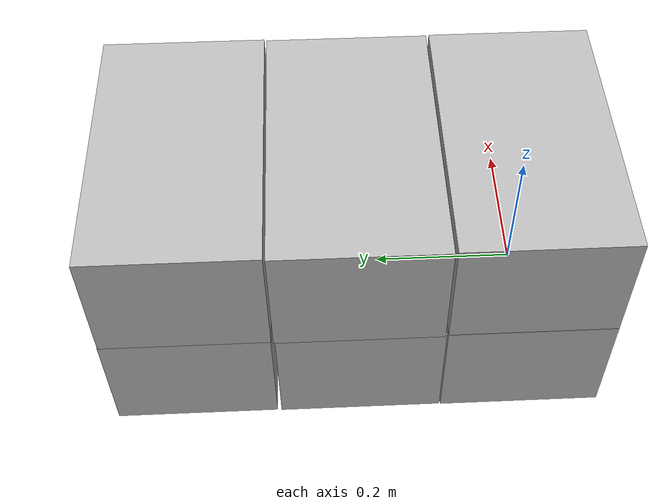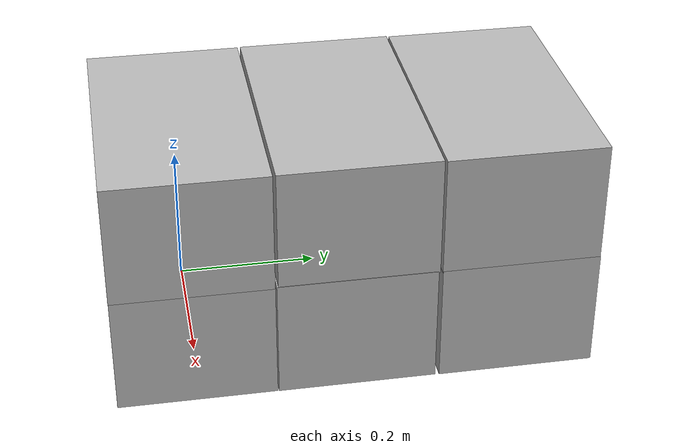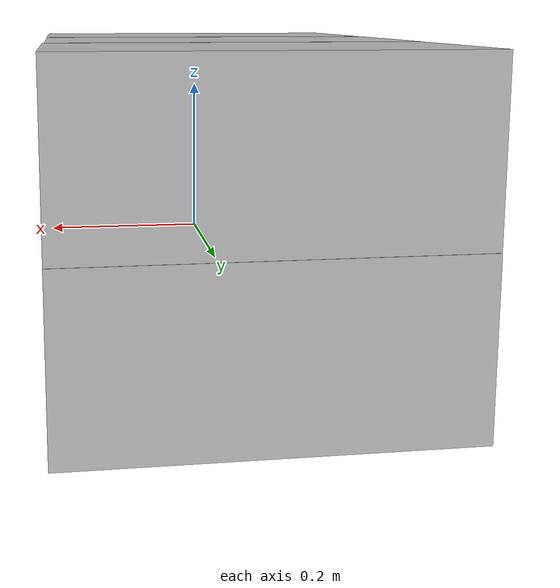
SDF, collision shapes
<?xml version='1.0'?>
<sdf version='1.7'>
  <model name='box_group'>
    <link name='link'>
      <inertial>
        <mass>2</mass>
        <inertia>
          <ixx>0.000861167</ixx>
          <ixy>0</ixy>
          <ixz>0</ixz>
          <iyy>0.000861167</iyy>
          <iyz>0</iyz>
          <izz>0.000861167</izz>
        </inertia>
        <pose>0 0 0 0 -0 0</pose>
      </inertial>
      <self_collide>0</self_collide>
      <enable_wind>0</enable_wind>
      <kinematic>0</kinematic>
      <pose>0 0.002105 0.177874 0 -0 0</pose>
      <visual name='visual'>
        <geometry>
          <mesh>
            <uri>model://small_box/meshes/small_box.dae</uri>
          </mesh>
        </geometry>
        <material>
          <shader type='pixel'/>
        </material>
        <pose>0 0 0 0 -0 0</pose>
        <transparency>0</transparency>
        <cast_shadows>1</cast_shadows>
      </visual>
      <collision name='collision'>
        <laser_retro>0</laser_retro>
        <max_contacts>10</max_contacts>
        <pose>0 0 0 0 -0 0</pose>
        <geometry>
          <box>
            <size>0.4 0.23 0.18</size>
          </box>
        </geometry>
        <surface>
          <friction>
            <ode>
              <mu>1</mu>
              <mu2>1</mu2>
              <fdir1>0 0 0</fdir1>
              <slip1>0</slip1>
              <slip2>0</slip2>
            </ode>
            <torsional>
              <coefficient>1</coefficient>
              <patch_radius>0</patch_radius>
              <surface_radius>0</surface_radius>
              <use_patch_radius>1</use_patch_radius>
              <ode>
                <slip>0</slip>
              </ode>
            </torsional>
          </friction>
          <bounce>
            <restitution_coefficient>0</restitution_coefficient>
            <threshold>1e+06</threshold>
          </bounce>
          <contact>
            <collide_without_contact>0</collide_without_contact>
            <collide_without_contact_bitmask>1</collide_without_contact_bitmask>
            <collide_bitmask>1</collide_bitmask>
            <ode>
              <soft_cfm>0</soft_cfm>
              <soft_erp>0.2</soft_erp>
              <kp>1e+13</kp>
              <kd>1</kd>
              <max_vel>0.1</max_vel>
              <min_depth>0.001</min_depth>
            </ode>
            <bullet>
              <split_impulse>1</split_impulse>
              <split_impulse_penetration_threshold>-0.01</split_impulse_penetration_threshold>
              <soft_cfm>0</soft_cfm>
              <soft_erp>0.2</soft_erp>
              <kp>1e+13</kp>
              <kd>1</kd>
            </bullet>
          </contact>
        </surface>
      </collision>
    </link>
    <link name='link_clone'>
      <inertial>
        <mass>2</mass>
        <inertia>
          <ixx>0.000861167</ixx>
          <ixy>0</ixy>
          <ixz>0</ixz>
          <iyy>0.000861167</iyy>
          <iyz>0</iyz>
          <izz>0.000861167</izz>
        </inertia>
        <pose>0 0 0 0 -0 0</pose>
      </inertial>
      <self_collide>0</self_collide>
      <enable_wind>0</enable_wind>
      <kinematic>0</kinematic>
      <pose>-0.000163 0.234317 0 0 -0 0</pose>
      <visual name='visual'>
        <geometry>
          <mesh>
            <uri>model://small_box/meshes/small_box.dae</uri>
          </mesh>
        </geometry>
        <material>
          <shader type='pixel'/>
        </material>
        <pose>0 0 0 0 -0 0</pose>
        <transparency>0</transparency>
        <cast_shadows>1</cast_shadows>
      </visual>
      <collision name='collision'>
        <laser_retro>0</laser_retro>
        <max_contacts>10</max_contacts>
        <pose>0 0 0 0 -0 0</pose>
        <geometry>
          <box>
            <size>0.4 0.23 0.18</size>
          </box>
        </geometry>
        <surface>
          <friction>
            <ode>
              <mu>1</mu>
              <mu2>1</mu2>
              <fdir1>0 0 0</fdir1>
              <slip1>0</slip1>
              <slip2>0</slip2>
            </ode>
            <torsional>
              <coefficient>1</coefficient>
              <patch_radius>0</patch_radius>
              <surface_radius>0</surface_radius>
              <use_patch_radius>1</use_patch_radius>
              <ode>
                <slip>0</slip>
              </ode>
            </torsional>
          </friction>
          <bounce>
            <restitution_coefficient>0</restitution_coefficient>
            <threshold>1e+06</threshold>
          </bounce>
          <contact>
            <collide_without_contact>0</collide_without_contact>
            <collide_without_contact_bitmask>1</collide_without_contact_bitmask>
            <collide_bitmask>1</collide_bitmask>
            <ode>
              <soft_cfm>0</soft_cfm>
              <soft_erp>0.2</soft_erp>
              <kp>1e+13</kp>
              <kd>1</kd>
              <max_vel>0.01</max_vel>
              <min_depth>0</min_depth>
            </ode>
            <bullet>
              <split_impulse>1</split_impulse>
              <split_impulse_penetration_threshold>-0.01</split_impulse_penetration_threshold>
              <soft_cfm>0</soft_cfm>
              <soft_erp>0.2</soft_erp>
              <kp>1e+13</kp>
              <kd>1</kd>
            </bullet>
          </contact>
        </surface>
      </collision>
    </link>
    <link name='link_clone_0'>
      <inertial>
        <mass>2</mass>
        <inertia>
          <ixx>0.000861167</ixx>
          <ixy>0</ixy>
          <ixz>0</ixz>
          <iyy>0.000861167</iyy>
          <iyz>0</iyz>
          <izz>0.000861167</izz>
        </inertia>
        <pose>0 0 0 0 -0 0</pose>
      </inertial>
      <self_collide>0</self_collide>
      <enable_wind>0</enable_wind>
      <kinematic>0</kinematic>
      <pose>0.000594 0.470173 0 0 -0 0</pose>
      <visual name='visual'>
        <geometry>
          <mesh>
            <uri>model://small_box/meshes/small_box.dae</uri>
          </mesh>
        </geometry>
        <material>
          <shader type='pixel'/>
        </material>
        <pose>0 0 0 0 -0 0</pose>
        <transparency>0</transparency>
        <cast_shadows>1</cast_shadows>
      </visual>
      <collision name='collision'>
        <laser_retro>0</laser_retro>
        <max_contacts>10</max_contacts>
        <pose>0 0 0 0 -0 0</pose>
        <geometry>
          <box>
            <size>0.4 0.23 0.18</size>
          </box>
        </geometry>
        <surface>
          <friction>
            <ode>
              <mu>1</mu>
              <mu2>1</mu2>
              <fdir1>0 0 0</fdir1>
              <slip1>0</slip1>
              <slip2>0</slip2>
            </ode>
            <torsional>
              <coefficient>1</coefficient>
              <patch_radius>0</patch_radius>
              <surface_radius>0</surface_radius>
              <use_patch_radius>1</use_patch_radius>
              <ode>
                <slip>0</slip>
              </ode>
            </torsional>
          </friction>
          <bounce>
            <restitution_coefficient>0</restitution_coefficient>
            <threshold>1e+06</threshold>
          </bounce>
          <contact>
            <collide_without_contact>0</collide_without_contact>
            <collide_without_contact_bitmask>1</collide_without_contact_bitmask>
            <collide_bitmask>1</collide_bitmask>
            <ode>
              <soft_cfm>0</soft_cfm>
              <soft_erp>0.2</soft_erp>
              <kp>1e+13</kp>
              <kd>1</kd>
              <max_vel>0.01</max_vel>
              <min_depth>0</min_depth>
            </ode>
            <bullet>
              <split_impulse>1</split_impulse>
              <split_impulse_penetration_threshold>-0.01</split_impulse_penetration_threshold>
              <soft_cfm>0</soft_cfm>
              <soft_erp>0.2</soft_erp>
              <kp>1e+13</kp>
              <kd>1</kd>
            </bullet>
          </contact>
        </surface>
      </collision>
    </link>
    <link name='link_clone_1'>
      <inertial>
        <mass>2</mass>
        <inertia>
          <ixx>0.000861167</ixx>
          <ixy>0</ixy>
          <ixz>0</ixz>
          <iyy>0.000861167</iyy>
          <iyz>0</iyz>
          <izz>0.000861167</izz>
        </inertia>
        <pose>0 0 0 0 -0 0</pose>
      </inertial>
      <self_collide>0</self_collide>
      <enable_wind>0</enable_wind>
      <kinematic>0</kinematic>
      <pose>-0.000723 0.002389 -2e-05 0 -0 0</pose>
      <visual name='visual'>
        <geometry>
          <mesh>
            <uri>model://small_box/meshes/small_box.dae</uri>
          </mesh>
        </geometry>
        <material>
          <shader type='pixel'/>
        </material>
        <pose>0 0 0 0 -0 0</pose>
        <transparency>0</transparency>
        <cast_shadows>1</cast_shadows>
      </visual>
      <collision name='collision'>
        <laser_retro>0</laser_retro>
        <max_contacts>10</max_contacts>
        <pose>0 0 0 0 -0 0</pose>
        <geometry>
          <box>
            <size>0.4 0.23 0.18</size>
          </box>
        </geometry>
        <surface>
          <friction>
            <ode>
              <mu>1</mu>
              <mu2>1</mu2>
              <fdir1>0 0 0</fdir1>
              <slip1>0</slip1>
              <slip2>0</slip2>
            </ode>
            <torsional>
              <coefficient>1</coefficient>
              <patch_radius>0</patch_radius>
              <surface_radius>0</surface_radius>
              <use_patch_radius>1</use_patch_radius>
              <ode>
                <slip>0</slip>
              </ode>
            </torsional>
          </friction>
          <bounce>
            <restitution_coefficient>0</restitution_coefficient>
            <threshold>1e+06</threshold>
          </bounce>
          <contact>
            <collide_without_contact>0</collide_without_contact>
            <collide_without_contact_bitmask>1</collide_without_contact_bitmask>
            <collide_bitmask>1</collide_bitmask>
            <ode>
              <soft_cfm>0</soft_cfm>
              <soft_erp>0.2</soft_erp>
              <kp>1e+13</kp>
              <kd>1</kd>
              <max_vel>0.01</max_vel>
              <min_depth>0</min_depth>
            </ode>
            <bullet>
              <split_impulse>1</split_impulse>
              <split_impulse_penetration_threshold>-0.01</split_impulse_penetration_threshold>
              <soft_cfm>0</soft_cfm>
              <soft_erp>0.2</soft_erp>
              <kp>1e+13</kp>
              <kd>1</kd>
            </bullet>
          </contact>
        </surface>
      </collision>
    </link>
    <link name='link_clone_2'>
      <inertial>
        <mass>2</mass>
        <inertia>
          <ixx>0.000861167</ixx>
          <ixy>0</ixy>
          <ixz>0</ixz>
          <iyy>0.000861167</iyy>
          <iyz>0</iyz>
          <izz>0.000861167</izz>
        </inertia>
        <pose>0 0 0 0 -0 0</pose>
      </inertial>
      <self_collide>0</self_collide>
      <enable_wind>0</enable_wind>
      <kinematic>0</kinematic>
      <pose>-0.001262 0.236427 0.177874 0 -0 0</pose>
      <visual name='visual'>
        <geometry>
          <mesh>
            <uri>model://small_box/meshes/small_box.dae</uri>
          </mesh>
        </geometry>
        <material>
          <shader type='pixel'/>
        </material>
        <pose>0 0 0 0 -0 0</pose>
        <transparency>0</transparency>
        <cast_shadows>1</cast_shadows>
      </visual>
      <collision name='collision'>
        <laser_retro>0</laser_retro>
        <max_contacts>10</max_contacts>
        <pose>0 0 0 0 -0 0</pose>
        <geometry>
          <box>
            <size>0.4 0.23 0.18</size>
          </box>
        </geometry>
        <surface>
          <friction>
            <ode>
              <mu>1</mu>
              <mu2>1</mu2>
              <fdir1>0 0 0</fdir1>
              <slip1>0</slip1>
              <slip2>0</slip2>
            </ode>
            <torsional>
              <coefficient>1</coefficient>
              <patch_radius>0</patch_radius>
              <surface_radius>0</surface_radius>
              <use_patch_radius>1</use_patch_radius>
              <ode>
                <slip>0</slip>
              </ode>
            </torsional>
          </friction>
          <bounce>
            <restitution_coefficient>0</restitution_coefficient>
            <threshold>1e+06</threshold>
          </bounce>
          <contact>
            <collide_without_contact>0</collide_without_contact>
            <collide_without_contact_bitmask>1</collide_without_contact_bitmask>
            <collide_bitmask>1</collide_bitmask>
            <ode>
              <soft_cfm>0</soft_cfm>
              <soft_erp>0.2</soft_erp>
              <kp>1e+13</kp>
              <kd>1</kd>
              <max_vel>0.01</max_vel>
              <min_depth>0</min_depth>
            </ode>
            <bullet>
              <split_impulse>1</split_impulse>
              <split_impulse_penetration_threshold>-0.01</split_impulse_penetration_threshold>
              <soft_cfm>0</soft_cfm>
              <soft_erp>0.2</soft_erp>
              <kp>1e+13</kp>
              <kd>1</kd>
            </bullet>
          </contact>
        </surface>
      </collision>
    </link>
    <link name='link_clone_3'>
      <inertial>
        <mass>2</mass>
        <inertia>
          <ixx>0.000861167</ixx>
          <ixy>0</ixy>
          <ixz>0</ixz>
          <iyy>0.000861167</iyy>
          <iyz>0</iyz>
          <izz>0.000861167</izz>
        </inertia>
        <pose>0 0 0 0 -0 0</pose>
      </inertial>
      <self_collide>0</self_collide>
      <enable_wind>0</enable_wind>
      <kinematic>0</kinematic>
      <pose>0.000582 0.469616 0.177874 0 -0 0</pose>
      <visual name='visual'>
        <geometry>
          <mesh>
            <uri>model://small_box/meshes/small_box.dae</uri>
          </mesh>
        </geometry>
        <material>
          <shader type='pixel'/>
        </material>
        <pose>0 0 0 0 -0 0</pose>
        <transparency>0</transparency>
        <cast_shadows>1</cast_shadows>
      </visual>
      <collision name='collision'>
        <laser_retro>0</laser_retro>
        <max_contacts>10</max_contacts>
        <pose>0 0 0 0 -0 0</pose>
        <geometry>
          <box>
            <size>0.4 0.23 0.18</size>
          </box>
        </geometry>
        <surface>
          <friction>
            <ode>
              <mu>1</mu>
              <mu2>1</mu2>
              <fdir1>0 0 0</fdir1>
              <slip1>0</slip1>
              <slip2>0</slip2>
            </ode>
            <torsional>
              <coefficient>1</coefficient>
              <patch_radius>0</patch_radius>
              <surface_radius>0</surface_radius>
              <use_patch_radius>1</use_patch_radius>
              <ode>
                <slip>0</slip>
              </ode>
            </torsional>
          </friction>
          <bounce>
            <restitution_coefficient>0</restitution_coefficient>
            <threshold>1e+06</threshold>
          </bounce>
          <contact>
            <collide_without_contact>0</collide_without_contact>
            <collide_without_contact_bitmask>1</collide_without_contact_bitmask>
            <collide_bitmask>1</collide_bitmask>
            <ode>
              <soft_cfm>0</soft_cfm>
              <soft_erp>0.2</soft_erp>
              <kp>1e+13</kp>
              <kd>1</kd>
              <max_vel>0.01</max_vel>
              <min_depth>0</min_depth>
            </ode>
            <bullet>
              <split_impulse>1</split_impulse>
              <split_impulse_penetration_threshold>-0.01</split_impulse_penetration_threshold>
              <soft_cfm>0</soft_cfm>
              <soft_erp>0.2</soft_erp>
              <kp>1e+13</kp>
              <kd>1</kd>
            </bullet>
          </contact>
        </surface>
      </collision>
    </link>
    <static>1</static>
    <allow_auto_disable>1</allow_auto_disable>
  </model>
</sdf>
